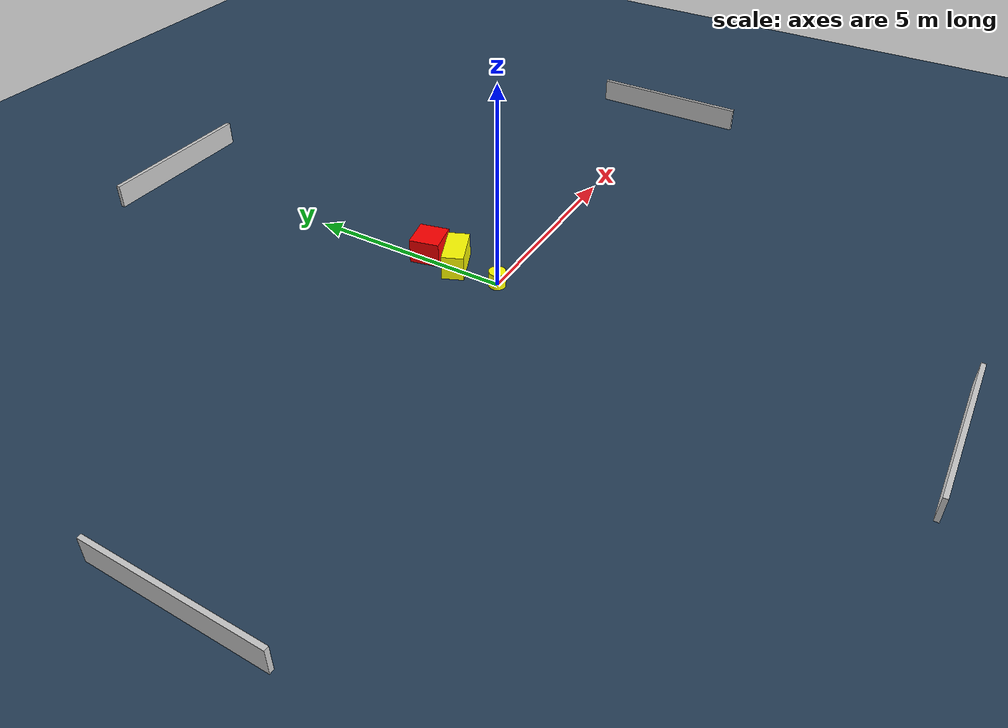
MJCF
<?xml version="1.0" ?>
<mujoco model="generated_environment">
  <option timestep="0.01" integrator="RK4" cone="elliptic"/>
  <default>
    <geom density="1"/>
  </default>
  <asset>
    <texture builtin="gradient" height="3072" name="skybox" rgb1="0.3 0.5 0.7" rgb2="0 0 0" type="skybox" width="512"/>
    <texture builtin="checker" height="300" name="groundplane" rgb1="0.2 0.3 0.4" rgb2="0.1 0.2 0.3" type="2d" width="300"/>
    <material name="groundplane" reflectance="0.2" texrepeat="5 5" texture="groundplane"/>
  </asset>
  <worldbody>
    <light dir="0 0 -1" directional="true" pos="0 0 1.5"/>
    <geom condim="3" friction="0.5 0.005 0.001" material="groundplane" name="floor" pos="0 0 0" size="0 0 0.05" type="plane"/>
    <body name="walls">
      <geom name="wall_1" condim="4" pos="-10.0 0.0 0.3" rgba="0.800000011920929 0.800000011920929 0.800000011920929 1.0" size="0.05 2.0 0.3" type="box"/>
      <geom name="wall_2" condim="4" pos="10.0 0.0 0.3" rgba="0.800000011920929 0.800000011920929 0.800000011920929 1.0" size="0.05 2.0 0.3" type="box"/>
      <geom name="wall_3" condim="4" pos="0.0 -10.0 0.3" rgba="0.800000011920929 0.800000011920929 0.800000011920929 1.0" size="2.0 0.05 0.3" type="box"/>
      <geom name="wall_4" condim="4" pos="0.0 10.0 0.3" rgba="0.800000011920929 0.800000011920929 0.800000011920929 1.0" size="2.0 0.05 0.3" type="box"/>
    </body>
    <body name="robot">
      <joint name="joint_x" type="slide" pos="0 0 0" axis="1 0 0"/>
      <joint name="joint_y" type="slide" pos="0 0 0" axis="0 1 0"/>
      <geom name="robot" type="cylinder" pos="0.0 0.0 0.2" size="0.2 0.2 0.0" mass="5.0" friction="1.0 0.005 0.0001" condim="4" rgba="1.0 1.0 0.0 1.0"/>
    </body>
    <body name="obstacle_1_movable">
      <geom name="obstacle_1_movable" condim="4" pos="0.1403654951435402 1.2037042654417855 0.3" euler="0 0 293.3717642302935" friction="0.0 0.005 0.001" rgba="1.0 1.0 0.0 1.0" size="0.2599642915376546 0.517749451668279 0.3" type="box" mass="0.1"/>
      <joint type="free"/>
    </body>
    <body name="obstacle_2_static">
      <geom name="obstacle_2_static" condim="4" pos="0.19903967089860813 1.9777143963437085 0.3" euler="0 0 192.7323904949833" friction="0.0 0.005 0.001" rgba="1.0 0.0 0.0 1.0" size="0.3722511901418981 0.36064172796322713 0.3" type="box"/>
    </body>
  </worldbody>
  <actuator>
    <motor name="actuator_x" joint="joint_x" gear="1" ctrlrange="-1 1"/>
    <motor name="actuator_y" joint="joint_y" gear="1" ctrlrange="-1 1"/>
  </actuator>
</mujoco>
